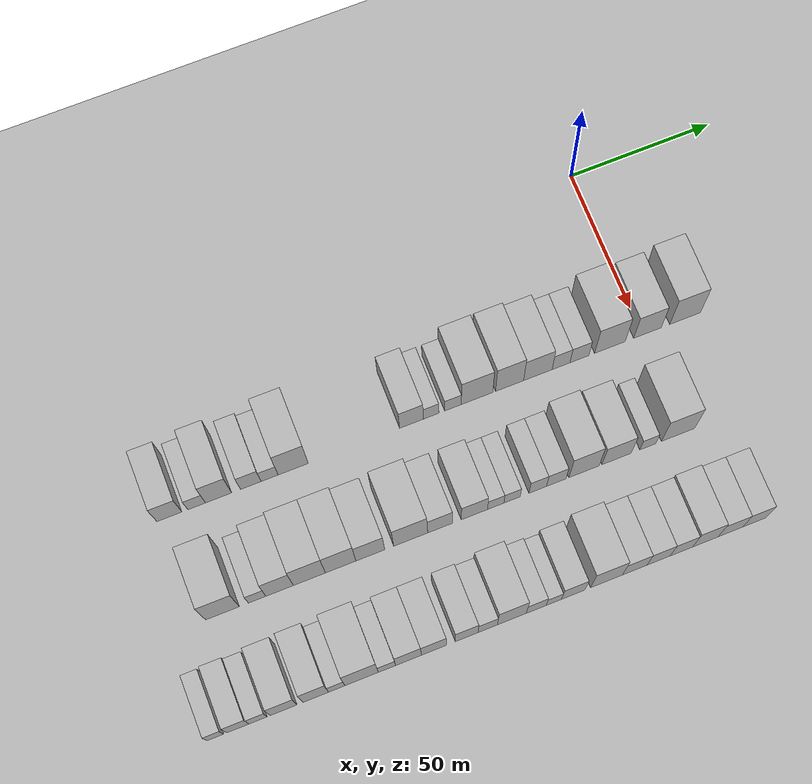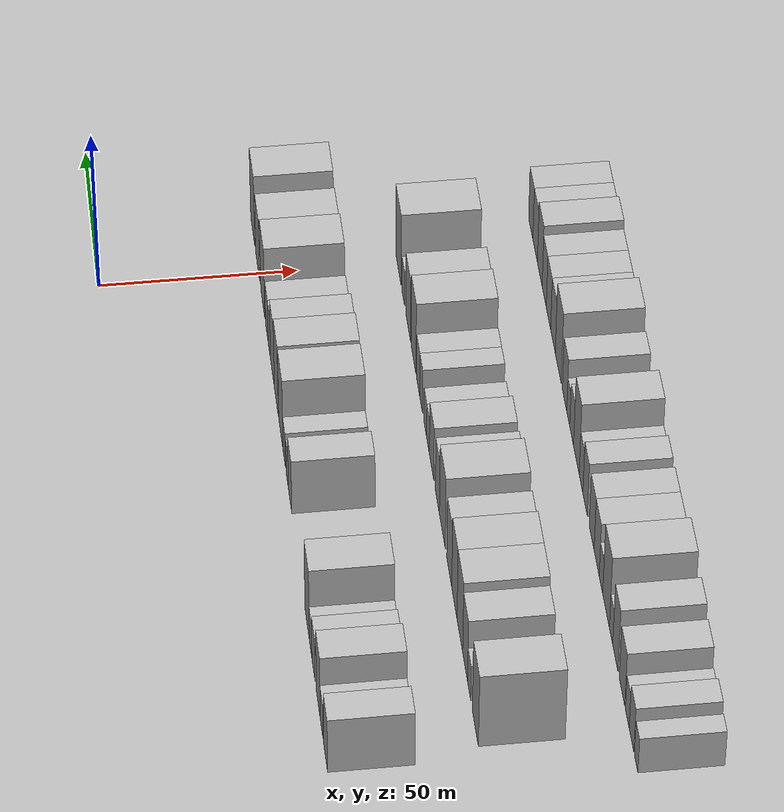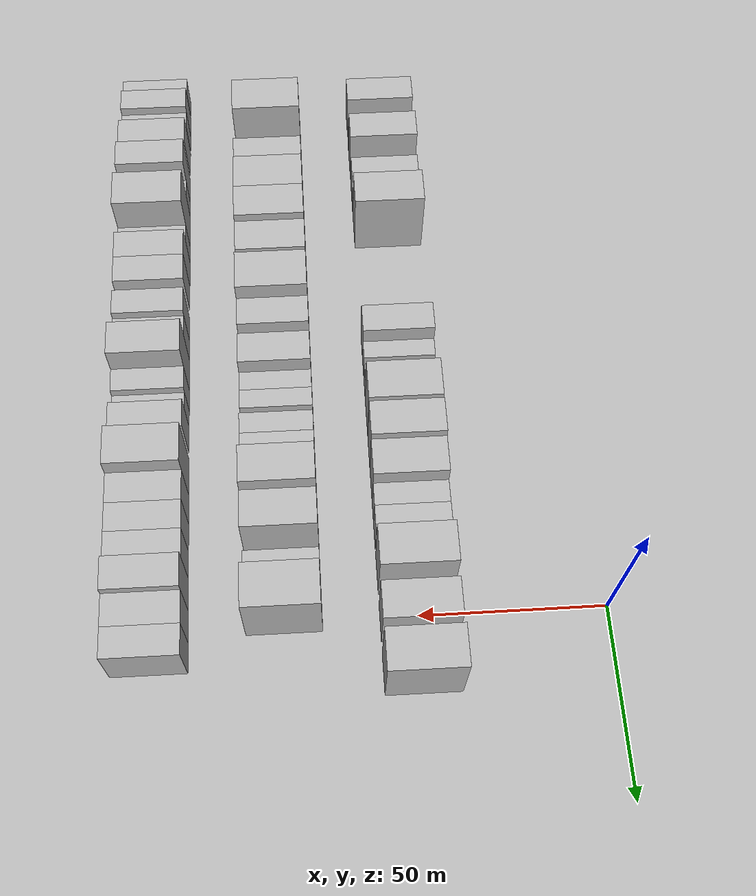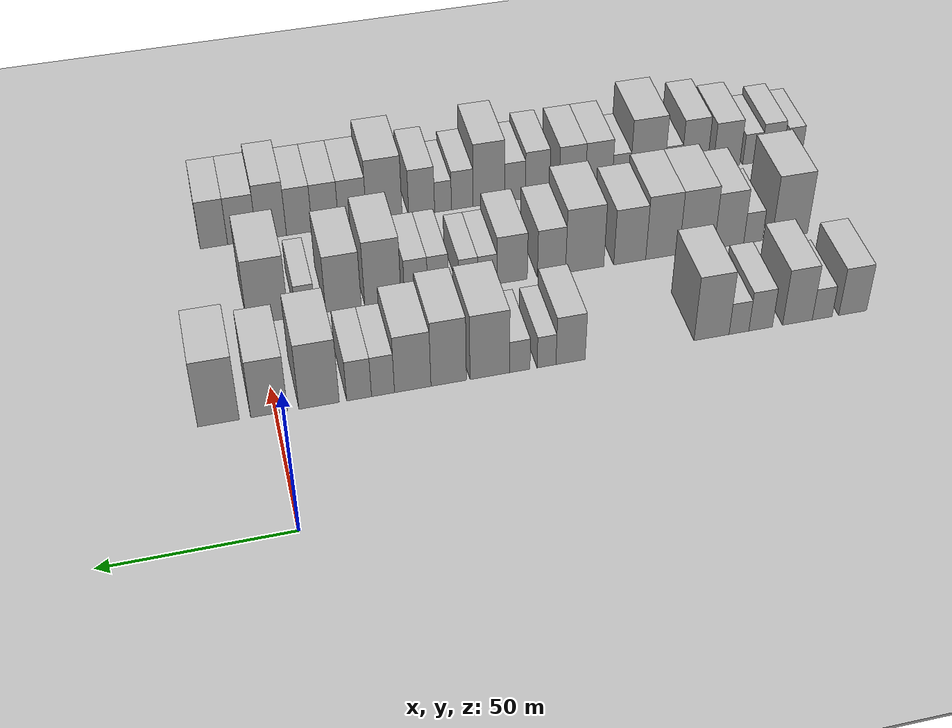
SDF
<sdf version="1.6">
 <world name="default">
  <include><name>ground_plane_1</name><uri>model://HANNAS_ground_plane</uri></include>
  <include>
   <name>ground_plane_2</name>
   <uri>model://HANNAS_ground_plane</uri>
   <pose>100 0 0  0 0 0</pose>
  </include>
  <model name="building_23">
   <static>1</static>
   <pose>50.0000 -162.8653 0 0.000000 0.000000 0.000000</pose>
   <link name="link">
    <pose>0 0 9.00 0 0 0</pose>
    <collision name="collision"><geometry><box><size>20.0000 8.3515 18.0000</size></box></geometry></collision>
    <visual name="visual">
     <cast_shadows>0</cast_shadows>
     <geometry><box><size>20.0000 8.3515 18.0000</size></box></geometry>
     <material>
      <script>
       <uri>model://HANNAS_wall/materials/scripts</uri>
       <uri>model://HANNAS_wall/materials/textures</uri>
       <name>vrc/HANNAS_wall</name>
      </script>
     </material>
    </visual>
   </link>
  </model>
  <model name="building_24">
   <static>1</static>
   <pose>50.0000 -153.7369 0 0.000000 0.000000 0.000000</pose>
   <link name="link">
    <pose>0 0 6.00 0 0 0</pose>
    <collision name="collision"><geometry><box><size>20.0000 5.9052 12.0000</size></box></geometry></collision>
    <visual name="visual">
     <cast_shadows>0</cast_shadows>
     <geometry><box><size>20.0000 5.9052 12.0000</size></box></geometry>
     <material>
      <script>
       <uri>model://HANNAS_wall/materials/scripts</uri>
       <uri>model://HANNAS_wall/materials/textures</uri>
       <name>vrc/HANNAS_wall</name>
      </script>
     </material>
    </visual>
   </link>
  </model>
  <model name="building_25">
   <static>1</static>
   <pose>50.0000 -146.3802 0 0.000000 0.000000 0.000000</pose>
   <link name="link">
    <pose>0 0 10.50 0 0 0</pose>
    <collision name="collision"><geometry><box><size>20.0000 8.8084 21.0000</size></box></geometry></collision>
    <visual name="visual">
     <cast_shadows>0</cast_shadows>
     <geometry><box><size>20.0000 8.8084 21.0000</size></box></geometry>
     <material>
      <script>
       <uri>model://HANNAS_wall/materials/scripts</uri>
       <uri>model://HANNAS_wall/materials/textures</uri>
       <name>vrc/HANNAS_wall</name>
      </script>
     </material>
    </visual>
   </link>
  </model>
  <model name="building_26">
   <static>1</static>
   <pose>50.0000 -135.5037 0 0.000000 0.000000 0.000000</pose>
   <link name="link">
    <pose>0 0 7.50 0 0 0</pose>
    <collision name="collision"><geometry><box><size>20.0000 6.9447 15.0000</size></box></geometry></collision>
    <visual name="visual">
     <cast_shadows>0</cast_shadows>
     <geometry><box><size>20.0000 6.9447 15.0000</size></box></geometry>
     <material>
      <script>
       <uri>model://HANNAS_wall/materials/scripts</uri>
       <uri>model://HANNAS_wall/materials/textures</uri>
       <name>vrc/HANNAS_wall</name>
      </script>
     </material>
    </visual>
   </link>
  </model>
  <model name="building_27">
   <static>1</static>
   <pose>50.0000 -129.1409 0 0.000000 0.000000 0.000000</pose>
   <link name="link">
    <pose>0 0 6.00 0 0 0</pose>
    <collision name="collision"><geometry><box><size>20.0000 5.7808 12.0000</size></box></geometry></collision>
    <visual name="visual">
     <cast_shadows>0</cast_shadows>
     <geometry><box><size>20.0000 5.7808 12.0000</size></box></geometry>
     <material>
      <script>
       <uri>model://HANNAS_wall/materials/scripts</uri>
       <uri>model://HANNAS_wall/materials/textures</uri>
       <name>vrc/HANNAS_wall</name>
      </script>
     </material>
    </visual>
   </link>
  </model>
  <model name="building_28">
   <static>1</static>
   <pose>50.0000 -121.1450 0 0.000000 0.000000 0.000000</pose>
   <link name="link">
    <pose>0 0 12.00 0 0 0</pose>
    <collision name="collision"><geometry><box><size>20.0000 10.2110 24.0000</size></box></geometry></collision>
    <visual name="visual">
     <cast_shadows>0</cast_shadows>
     <geometry><box><size>20.0000 10.2110 24.0000</size></box></geometry>
     <material>
      <script>
       <uri>model://HANNAS_wall/materials/scripts</uri>
       <uri>model://HANNAS_wall/materials/textures</uri>
       <name>vrc/HANNAS_wall</name>
      </script>
     </material>
    </visual>
   </link>
  </model>
  <model name="building_29">
   <static>1</static>
   <pose>50.0000 -80.6771 0 0.000000 0.000000 0.000000</pose>
   <link name="link">
    <pose>0 0 9.00 0 0 0</pose>
    <collision name="collision"><geometry><box><size>20.0000 8.2416 18.0000</size></box></geometry></collision>
    <visual name="visual">
     <cast_shadows>0</cast_shadows>
     <geometry><box><size>20.0000 8.2416 18.0000</size></box></geometry>
     <material>
      <script>
       <uri>model://HANNAS_wall/materials/scripts</uri>
       <uri>model://HANNAS_wall/materials/textures</uri>
       <name>vrc/HANNAS_wall</name>
      </script>
     </material>
    </visual>
   </link>
  </model>
  <model name="building_30">
   <static>1</static>
   <pose>50.0000 -73.9138 0 0.000000 0.000000 0.000000</pose>
   <link name="link">
    <pose>0 0 6.00 0 0 0</pose>
    <collision name="collision"><geometry><box><size>20.0000 5.2849 12.0000</size></box></geometry></collision>
    <visual name="visual">
     <cast_shadows>0</cast_shadows>
     <geometry><box><size>20.0000 5.2849 12.0000</size></box></geometry>
     <material>
      <script>
       <uri>model://HANNAS_wall/materials/scripts</uri>
       <uri>model://HANNAS_wall/materials/textures</uri>
       <name>vrc/HANNAS_wall</name>
      </script>
     </material>
    </visual>
   </link>
  </model>
  <model name="building_31">
   <static>1</static>
   <pose>50.0000 -66.4016 0 0.000000 0.000000 0.000000</pose>
   <link name="link">
    <pose>0 0 6.00 0 0 0</pose>
    <collision name="collision"><geometry><box><size>20.0000 5.7396 12.0000</size></box></geometry></collision>
    <visual name="visual">
     <cast_shadows>0</cast_shadows>
     <geometry><box><size>20.0000 5.7396 12.0000</size></box></geometry>
     <material>
      <script>
       <uri>model://HANNAS_wall/materials/scripts</uri>
       <uri>model://HANNAS_wall/materials/textures</uri>
       <name>vrc/HANNAS_wall</name>
      </script>
     </material>
    </visual>
   </link>
  </model>
  <model name="building_32">
   <static>1</static>
   <pose>50.0000 -58.0691 0 0.000000 0.000000 0.000000</pose>
   <link name="link">
    <pose>0 0 12.00 0 0 0</pose>
    <collision name="collision"><geometry><box><size>20.0000 10.9255 24.0000</size></box></geometry></collision>
    <visual name="visual">
     <cast_shadows>0</cast_shadows>
     <geometry><box><size>20.0000 10.9255 24.0000</size></box></geometry>
     <material>
      <script>
       <uri>model://HANNAS_wall/materials/scripts</uri>
       <uri>model://HANNAS_wall/materials/textures</uri>
       <name>vrc/HANNAS_wall</name>
      </script>
     </material>
    </visual>
   </link>
  </model>
  <model name="building_33">
   <static>1</static>
   <pose>50.0000 -46.7354 0 0.000000 0.000000 0.000000</pose>
   <link name="link">
    <pose>0 0 12.00 0 0 0</pose>
    <collision name="collision"><geometry><box><size>20.0000 9.7419 24.0000</size></box></geometry></collision>
    <visual name="visual">
     <cast_shadows>0</cast_shadows>
     <geometry><box><size>20.0000 9.7419 24.0000</size></box></geometry>
     <material>
      <script>
       <uri>model://HANNAS_wall/materials/scripts</uri>
       <uri>model://HANNAS_wall/materials/textures</uri>
       <name>vrc/HANNAS_wall</name>
      </script>
     </material>
    </visual>
   </link>
  </model>
  <model name="building_34">
   <static>1</static>
   <pose>50.0000 -36.8863 0 0.000000 0.000000 0.000000</pose>
   <link name="link">
    <pose>0 0 10.50 0 0 0</pose>
    <collision name="collision"><geometry><box><size>20.0000 9.9563 21.0000</size></box></geometry></collision>
    <visual name="visual">
     <cast_shadows>0</cast_shadows>
     <geometry><box><size>20.0000 9.9563 21.0000</size></box></geometry>
     <material>
      <script>
       <uri>model://HANNAS_wall/materials/scripts</uri>
       <uri>model://HANNAS_wall/materials/textures</uri>
       <name>vrc/HANNAS_wall</name>
      </script>
     </material>
    </visual>
   </link>
  </model>
  <model name="building_35">
   <static>1</static>
   <pose>50.0000 -28.7906 0 0.000000 0.000000 0.000000</pose>
   <link name="link">
    <pose>0 0 7.50 0 0 0</pose>
    <collision name="collision"><geometry><box><size>20.0000 6.2351 15.0000</size></box></geometry></collision>
    <visual name="visual">
     <cast_shadows>0</cast_shadows>
     <geometry><box><size>20.0000 6.2351 15.0000</size></box></geometry>
     <material>
      <script>
       <uri>model://HANNAS_wall/materials/scripts</uri>
       <uri>model://HANNAS_wall/materials/textures</uri>
       <name>vrc/HANNAS_wall</name>
      </script>
     </material>
    </visual>
   </link>
  </model>
  <model name="building_36">
   <static>1</static>
   <pose>50.0000 -22.3189 0 0.000000 0.000000 0.000000</pose>
   <link name="link">
    <pose>0 0 7.50 0 0 0</pose>
    <collision name="collision"><geometry><box><size>20.0000 6.7085 15.0000</size></box></geometry></collision>
    <visual name="visual">
     <cast_shadows>0</cast_shadows>
     <geometry><box><size>20.0000 6.7085 15.0000</size></box></geometry>
     <material>
      <script>
       <uri>model://HANNAS_wall/materials/scripts</uri>
       <uri>model://HANNAS_wall/materials/textures</uri>
       <name>vrc/HANNAS_wall</name>
      </script>
     </material>
    </visual>
   </link>
  </model>
  <model name="building_37">
   <static>1</static>
   <pose>50.0000 -11.5609 0 0.000000 0.000000 0.000000</pose>
   <link name="link">
    <pose>0 0 12.00 0 0 0</pose>
    <collision name="collision"><geometry><box><size>20.0000 10.8074 24.0000</size></box></geometry></collision>
    <visual name="visual">
     <cast_shadows>0</cast_shadows>
     <geometry><box><size>20.0000 10.8074 24.0000</size></box></geometry>
     <material>
      <script>
       <uri>model://HANNAS_wall/materials/scripts</uri>
       <uri>model://HANNAS_wall/materials/textures</uri>
       <name>vrc/HANNAS_wall</name>
      </script>
     </material>
    </visual>
   </link>
  </model>
  <model name="building_38">
   <static>1</static>
   <pose>50.0000 1.7379 0 0.000000 0.000000 0.000000</pose>
   <link name="link">
    <pose>0 0 10.50 0 0 0</pose>
    <collision name="collision"><geometry><box><size>20.0000 9.7903 21.0000</size></box></geometry></collision>
    <visual name="visual">
     <cast_shadows>0</cast_shadows>
     <geometry><box><size>20.0000 9.7903 21.0000</size></box></geometry>
     <material>
      <script>
       <uri>model://HANNAS_wall/materials/scripts</uri>
       <uri>model://HANNAS_wall/materials/textures</uri>
       <name>vrc/HANNAS_wall</name>
      </script>
     </material>
    </visual>
   </link>
  </model>
  <model name="building_39">
   <static>1</static>
   <pose>50.0000 15.1060 0 0.000000 0.000000 0.000000</pose>
   <link name="link">
    <pose>0 0 12.00 0 0 0</pose>
    <collision name="collision"><geometry><box><size>20.0000 10.9457 24.0000</size></box></geometry></collision>
    <visual name="visual">
     <cast_shadows>0</cast_shadows>
     <geometry><box><size>20.0000 10.9457 24.0000</size></box></geometry>
     <material>
      <script>
       <uri>model://HANNAS_wall/materials/scripts</uri>
       <uri>model://HANNAS_wall/materials/textures</uri>
       <name>vrc/HANNAS_wall</name>
      </script>
     </material>
    </visual>
   </link>
  </model>
  <model name="building_94">
   <static>1</static>
   <pose>85.0000 -157.5583 0 0.000000 0.000000 0.000000</pose>
   <link name="link">
    <pose>0 0 12.00 0 0 0</pose>
    <collision name="collision"><geometry><box><size>20.0000 11.1377 24.0000</size></box></geometry></collision>
    <visual name="visual">
     <cast_shadows>0</cast_shadows>
     <geometry><box><size>20.0000 11.1377 24.0000</size></box></geometry>
     <material>
      <script>
       <uri>model://HANNAS_wall/materials/scripts</uri>
       <uri>model://HANNAS_wall/materials/textures</uri>
       <name>vrc/HANNAS_wall</name>
      </script>
     </material>
    </visual>
   </link>
  </model>
  <model name="building_95">
   <static>1</static>
   <pose>85.0000 -146.0877 0 0.000000 0.000000 0.000000</pose>
   <link name="link">
    <pose>0 0 6.00 0 0 0</pose>
    <collision name="collision"><geometry><box><size>20.0000 5.8034 12.0000</size></box></geometry></collision>
    <visual name="visual">
     <cast_shadows>0</cast_shadows>
     <geometry><box><size>20.0000 5.8034 12.0000</size></box></geometry>
     <material>
      <script>
       <uri>model://HANNAS_wall/materials/scripts</uri>
       <uri>model://HANNAS_wall/materials/textures</uri>
       <name>vrc/HANNAS_wall</name>
      </script>
     </material>
    </visual>
   </link>
  </model>
  <model name="building_96">
   <static>1</static>
   <pose>85.0000 -138.6316 0 0.000000 0.000000 0.000000</pose>
   <link name="link">
    <pose>0 0 10.50 0 0 0</pose>
    <collision name="collision"><geometry><box><size>20.0000 9.1089 21.0000</size></box></geometry></collision>
    <visual name="visual">
     <cast_shadows>0</cast_shadows>
     <geometry><box><size>20.0000 9.1089 21.0000</size></box></geometry>
     <material>
      <script>
       <uri>model://HANNAS_wall/materials/scripts</uri>
       <uri>model://HANNAS_wall/materials/textures</uri>
       <name>vrc/HANNAS_wall</name>
      </script>
     </material>
    </visual>
   </link>
  </model>
  <model name="building_97">
   <static>1</static>
   <pose>85.0000 -128.6954 0 0.000000 0.000000 0.000000</pose>
   <link name="link">
    <pose>0 0 12.00 0 0 0</pose>
    <collision name="collision"><geometry><box><size>20.0000 10.7635 24.0000</size></box></geometry></collision>
    <visual name="visual">
     <cast_shadows>0</cast_shadows>
     <geometry><box><size>20.0000 10.7635 24.0000</size></box></geometry>
     <material>
      <script>
       <uri>model://HANNAS_wall/materials/scripts</uri>
       <uri>model://HANNAS_wall/materials/textures</uri>
       <name>vrc/HANNAS_wall</name>
      </script>
     </material>
    </visual>
   </link>
  </model>
  <model name="building_98">
   <static>1</static>
   <pose>85.0000 -118.2022 0 0.000000 0.000000 0.000000</pose>
   <link name="link">
    <pose>0 0 12.00 0 0 0</pose>
    <collision name="collision"><geometry><box><size>20.0000 10.2230 24.0000</size></box></geometry></collision>
    <visual name="visual">
     <cast_shadows>0</cast_shadows>
     <geometry><box><size>20.0000 10.2230 24.0000</size></box></geometry>
     <material>
      <script>
       <uri>model://HANNAS_wall/materials/scripts</uri>
       <uri>model://HANNAS_wall/materials/textures</uri>
       <name>vrc/HANNAS_wall</name>
      </script>
     </material>
    </visual>
   </link>
  </model>
  <model name="building_99">
   <static>1</static>
   <pose>85.0000 -108.2483 0 0.000000 0.000000 0.000000</pose>
   <link name="link">
    <pose>0 0 10.50 0 0 0</pose>
    <collision name="collision"><geometry><box><size>20.0000 9.6846 21.0000</size></box></geometry></collision>
    <visual name="visual">
     <cast_shadows>0</cast_shadows>
     <geometry><box><size>20.0000 9.6846 21.0000</size></box></geometry>
     <material>
      <script>
       <uri>model://HANNAS_wall/materials/scripts</uri>
       <uri>model://HANNAS_wall/materials/textures</uri>
       <name>vrc/HANNAS_wall</name>
      </script>
     </material>
    </visual>
   </link>
  </model>
  <model name="building_100">
   <static>1</static>
   <pose>85.0000 -94.6625 0 0.000000 0.000000 0.000000</pose>
   <link name="link">
    <pose>0 0 12.00 0 0 0</pose>
    <collision name="collision"><geometry><box><size>20.0000 11.4871 24.0000</size></box></geometry></collision>
    <visual name="visual">
     <cast_shadows>0</cast_shadows>
     <geometry><box><size>20.0000 11.4871 24.0000</size></box></geometry>
     <material>
      <script>
       <uri>model://HANNAS_wall/materials/scripts</uri>
       <uri>model://HANNAS_wall/materials/textures</uri>
       <name>vrc/HANNAS_wall</name>
      </script>
     </material>
    </visual>
   </link>
  </model>
  <model name="building_101">
   <static>1</static>
   <pose>85.0000 -84.7346 0 0.000000 0.000000 0.000000</pose>
   <link name="link">
    <pose>0 0 9.00 0 0 0</pose>
    <collision name="collision"><geometry><box><size>20.0000 8.3687 18.0000</size></box></geometry></collision>
    <visual name="visual">
     <cast_shadows>0</cast_shadows>
     <geometry><box><size>20.0000 8.3687 18.0000</size></box></geometry>
     <material>
      <script>
       <uri>model://HANNAS_wall/materials/scripts</uri>
       <uri>model://HANNAS_wall/materials/textures</uri>
       <name>vrc/HANNAS_wall</name>
      </script>
     </material>
    </visual>
   </link>
  </model>
  <model name="building_102">
   <static>1</static>
   <pose>85.0000 -73.0679 0 0.000000 0.000000 0.000000</pose>
   <link name="link">
    <pose>0 0 9.00 0 0 0</pose>
    <collision name="collision"><geometry><box><size>20.0000 8.9647 18.0000</size></box></geometry></collision>
    <visual name="visual">
     <cast_shadows>0</cast_shadows>
     <geometry><box><size>20.0000 8.9647 18.0000</size></box></geometry>
     <material>
      <script>
       <uri>model://HANNAS_wall/materials/scripts</uri>
       <uri>model://HANNAS_wall/materials/textures</uri>
       <name>vrc/HANNAS_wall</name>
      </script>
     </material>
    </visual>
   </link>
  </model>
  <model name="building_103">
   <static>1</static>
   <pose>85.0000 -65.7887 0 0.000000 0.000000 0.000000</pose>
   <link name="link">
    <pose>0 0 6.00 0 0 0</pose>
    <collision name="collision"><geometry><box><size>20.0000 5.5937 12.0000</size></box></geometry></collision>
    <visual name="visual">
     <cast_shadows>0</cast_shadows>
     <geometry><box><size>20.0000 5.5937 12.0000</size></box></geometry>
     <material>
      <script>
       <uri>model://HANNAS_wall/materials/scripts</uri>
       <uri>model://HANNAS_wall/materials/textures</uri>
       <name>vrc/HANNAS_wall</name>
      </script>
     </material>
    </visual>
   </link>
  </model>
  <model name="building_104">
   <static>1</static>
   <pose>85.0000 -60.2084 0 0.000000 0.000000 0.000000</pose>
   <link name="link">
    <pose>0 0 6.00 0 0 0</pose>
    <collision name="collision"><geometry><box><size>20.0000 5.5667 12.0000</size></box></geometry></collision>
    <visual name="visual">
     <cast_shadows>0</cast_shadows>
     <geometry><box><size>20.0000 5.5667 12.0000</size></box></geometry>
     <material>
      <script>
       <uri>model://HANNAS_wall/materials/scripts</uri>
       <uri>model://HANNAS_wall/materials/textures</uri>
       <name>vrc/HANNAS_wall</name>
      </script>
     </material>
    </visual>
   </link>
  </model>
  <model name="building_105">
   <static>1</static>
   <pose>85.0000 -51.4132 0 0.000000 0.000000 0.000000</pose>
   <link name="link">
    <pose>0 0 7.50 0 0 0</pose>
    <collision name="collision"><geometry><box><size>20.0000 6.0238 15.0000</size></box></geometry></collision>
    <visual name="visual">
     <cast_shadows>0</cast_shadows>
     <geometry><box><size>20.0000 6.0238 15.0000</size></box></geometry>
     <material>
      <script>
       <uri>model://HANNAS_wall/materials/scripts</uri>
       <uri>model://HANNAS_wall/materials/textures</uri>
       <name>vrc/HANNAS_wall</name>
      </script>
     </material>
    </visual>
   </link>
  </model>
  <model name="building_106">
   <static>1</static>
   <pose>85.0000 -45.0506 0 0.000000 0.000000 0.000000</pose>
   <link name="link">
    <pose>0 0 7.50 0 0 0</pose>
    <collision name="collision"><geometry><box><size>20.0000 6.7012 15.0000</size></box></geometry></collision>
    <visual name="visual">
     <cast_shadows>0</cast_shadows>
     <geometry><box><size>20.0000 6.7012 15.0000</size></box></geometry>
     <material>
      <script>
       <uri>model://HANNAS_wall/materials/scripts</uri>
       <uri>model://HANNAS_wall/materials/textures</uri>
       <name>vrc/HANNAS_wall</name>
      </script>
     </material>
    </visual>
   </link>
  </model>
  <model name="building_107">
   <static>1</static>
   <pose>85.0000 -35.4828 0 0.000000 0.000000 0.000000</pose>
   <link name="link">
    <pose>0 0 12.00 0 0 0</pose>
    <collision name="collision"><geometry><box><size>20.0000 10.4345 24.0000</size></box></geometry></collision>
    <visual name="visual">
     <cast_shadows>0</cast_shadows>
     <geometry><box><size>20.0000 10.4345 24.0000</size></box></geometry>
     <material>
      <script>
       <uri>model://HANNAS_wall/materials/scripts</uri>
       <uri>model://HANNAS_wall/materials/textures</uri>
       <name>vrc/HANNAS_wall</name>
      </script>
     </material>
    </visual>
   </link>
  </model>
  <model name="building_108">
   <static>1</static>
   <pose>85.0000 -24.1952 0 0.000000 0.000000 0.000000</pose>
   <link name="link">
    <pose>0 0 10.50 0 0 0</pose>
    <collision name="collision"><geometry><box><size>20.0000 10.1408 21.0000</size></box></geometry></collision>
    <visual name="visual">
     <cast_shadows>0</cast_shadows>
     <geometry><box><size>20.0000 10.1408 21.0000</size></box></geometry>
     <material>
      <script>
       <uri>model://HANNAS_wall/materials/scripts</uri>
       <uri>model://HANNAS_wall/materials/textures</uri>
       <name>vrc/HANNAS_wall</name>
      </script>
     </material>
    </visual>
   </link>
  </model>
  <model name="building_109">
   <static>1</static>
   <pose>85.0000 -13.3583 0 0.000000 0.000000 0.000000</pose>
   <link name="link">
    <pose>0 0 6.00 0 0 0</pose>
    <collision name="collision"><geometry><box><size>20.0000 5.5329 12.0000</size></box></geometry></collision>
    <visual name="visual">
     <cast_shadows>0</cast_shadows>
     <geometry><box><size>20.0000 5.5329 12.0000</size></box></geometry>
     <material>
      <script>
       <uri>model://HANNAS_wall/materials/scripts</uri>
       <uri>model://HANNAS_wall/materials/textures</uri>
       <name>vrc/HANNAS_wall</name>
      </script>
     </material>
    </visual>
   </link>
  </model>
  <model name="building_110">
   <static>1</static>
   <pose>85.0000 -2.7761 0 0.000000 0.000000 0.000000</pose>
   <link name="link">
    <pose>0 0 12.00 0 0 0</pose>
    <collision name="collision"><geometry><box><size>20.0000 11.6315 24.0000</size></box></geometry></collision>
    <visual name="visual">
     <cast_shadows>0</cast_shadows>
     <geometry><box><size>20.0000 11.6315 24.0000</size></box></geometry>
     <material>
      <script>
       <uri>model://HANNAS_wall/materials/scripts</uri>
       <uri>model://HANNAS_wall/materials/textures</uri>
       <name>vrc/HANNAS_wall</name>
      </script>
     </material>
    </visual>
   </link>
  </model>
  <model name="building_171">
   <static>1</static>
   <pose>120.0000 -172.3507 0 0.000000 0.000000 0.000000</pose>
   <link name="link">
    <pose>0 0 6.00 0 0 0</pose>
    <collision name="collision"><geometry><box><size>20.0000 5.4005 12.0000</size></box></geometry></collision>
    <visual name="visual">
     <cast_shadows>0</cast_shadows>
     <geometry><box><size>20.0000 5.4005 12.0000</size></box></geometry>
     <material>
      <script>
       <uri>model://HANNAS_wall/materials/scripts</uri>
       <uri>model://HANNAS_wall/materials/textures</uri>
       <name>vrc/HANNAS_wall</name>
      </script>
     </material>
    </visual>
   </link>
  </model>
  <model name="building_172">
   <static>1</static>
   <pose>120.0000 -165.0435 0 0.000000 0.000000 0.000000</pose>
   <link name="link">
    <pose>0 0 7.50 0 0 0</pose>
    <collision name="collision"><geometry><box><size>20.0000 7.2139 15.0000</size></box></geometry></collision>
    <visual name="visual">
     <cast_shadows>0</cast_shadows>
     <geometry><box><size>20.0000 7.2139 15.0000</size></box></geometry>
     <material>
      <script>
       <uri>model://HANNAS_wall/materials/scripts</uri>
       <uri>model://HANNAS_wall/materials/textures</uri>
       <name>vrc/HANNAS_wall</name>
      </script>
     </material>
    </visual>
   </link>
  </model>
  <model name="building_173">
   <static>1</static>
   <pose>120.0000 -158.4932 0 0.000000 0.000000 0.000000</pose>
   <link name="link">
    <pose>0 0 6.00 0 0 0</pose>
    <collision name="collision"><geometry><box><size>20.0000 5.8865 12.0000</size></box></geometry></collision>
    <visual name="visual">
     <cast_shadows>0</cast_shadows>
     <geometry><box><size>20.0000 5.8865 12.0000</size></box></geometry>
     <material>
      <script>
       <uri>model://HANNAS_wall/materials/scripts</uri>
       <uri>model://HANNAS_wall/materials/textures</uri>
       <name>vrc/HANNAS_wall</name>
      </script>
     </material>
    </visual>
   </link>
  </model>
  <model name="building_174">
   <static>1</static>
   <pose>120.0000 -150.1809 0 0.000000 0.000000 0.000000</pose>
   <link name="link">
    <pose>0 0 9.00 0 0 0</pose>
    <collision name="collision"><geometry><box><size>20.0000 8.7381 18.0000</size></box></geometry></collision>
    <visual name="visual">
     <cast_shadows>0</cast_shadows>
     <geometry><box><size>20.0000 8.7381 18.0000</size></box></geometry>
     <material>
      <script>
       <uri>model://HANNAS_wall/materials/scripts</uri>
       <uri>model://HANNAS_wall/materials/textures</uri>
       <name>vrc/HANNAS_wall</name>
      </script>
     </material>
    </visual>
   </link>
  </model>
  <model name="building_175">
   <static>1</static>
   <pose>120.0000 -139.6105 0 0.000000 0.000000 0.000000</pose>
   <link name="link">
    <pose>0 0 10.50 0 0 0</pose>
    <collision name="collision"><geometry><box><size>20.0000 8.4028 21.0000</size></box></geometry></collision>
    <visual name="visual">
     <cast_shadows>0</cast_shadows>
     <geometry><box><size>20.0000 8.4028 21.0000</size></box></geometry>
     <material>
      <script>
       <uri>model://HANNAS_wall/materials/scripts</uri>
       <uri>model://HANNAS_wall/materials/textures</uri>
       <name>vrc/HANNAS_wall</name>
      </script>
     </material>
    </visual>
   </link>
  </model>
  <model name="building_176">
   <static>1</static>
   <pose>120.0000 -132.7297 0 0.000000 0.000000 0.000000</pose>
   <link name="link">
    <pose>0 0 6.00 0 0 0</pose>
    <collision name="collision"><geometry><box><size>20.0000 5.3589 12.0000</size></box></geometry></collision>
    <visual name="visual">
     <cast_shadows>0</cast_shadows>
     <geometry><box><size>20.0000 5.3589 12.0000</size></box></geometry>
     <material>
      <script>
       <uri>model://HANNAS_wall/materials/scripts</uri>
       <uri>model://HANNAS_wall/materials/textures</uri>
       <name>vrc/HANNAS_wall</name>
      </script>
     </material>
    </visual>
   </link>
  </model>
  <model name="building_177">
   <static>1</static>
   <pose>120.0000 -124.5408 0 0.000000 0.000000 0.000000</pose>
   <link name="link">
    <pose>0 0 12.00 0 0 0</pose>
    <collision name="collision"><geometry><box><size>20.0000 11.0188 24.0000</size></box></geometry></collision>
    <visual name="visual">
     <cast_shadows>0</cast_shadows>
     <geometry><box><size>20.0000 11.0188 24.0000</size></box></geometry>
     <material>
      <script>
       <uri>model://HANNAS_wall/materials/scripts</uri>
       <uri>model://HANNAS_wall/materials/textures</uri>
       <name>vrc/HANNAS_wall</name>
      </script>
     </material>
    </visual>
   </link>
  </model>
  <model name="building_178">
   <static>1</static>
   <pose>120.0000 -116.1873 0 0.000000 0.000000 0.000000</pose>
   <link name="link">
    <pose>0 0 6.00 0 0 0</pose>
    <collision name="collision"><geometry><box><size>20.0000 5.6883 12.0000</size></box></geometry></collision>
    <visual name="visual">
     <cast_shadows>0</cast_shadows>
     <geometry><box><size>20.0000 5.6883 12.0000</size></box></geometry>
     <material>
      <script>
       <uri>model://HANNAS_wall/materials/scripts</uri>
       <uri>model://HANNAS_wall/materials/textures</uri>
       <name>vrc/HANNAS_wall</name>
      </script>
     </material>
    </visual>
   </link>
  </model>
  <model name="building_179">
   <static>1</static>
   <pose>120.0000 -109.0660 0 0.000000 0.000000 0.000000</pose>
   <link name="link">
    <pose>0 0 9.00 0 0 0</pose>
    <collision name="collision"><geometry><box><size>20.0000 8.5544 18.0000</size></box></geometry></collision>
    <visual name="visual">
     <cast_shadows>0</cast_shadows>
     <geometry><box><size>20.0000 8.5544 18.0000</size></box></geometry>
     <material>
      <script>
       <uri>model://HANNAS_wall/materials/scripts</uri>
       <uri>model://HANNAS_wall/materials/textures</uri>
       <name>vrc/HANNAS_wall</name>
      </script>
     </material>
    </visual>
   </link>
  </model>
  <model name="building_180">
   <static>1</static>
   <pose>120.0000 -100.6531 0 0.000000 0.000000 0.000000</pose>
   <link name="link">
    <pose>0 0 9.00 0 0 0</pose>
    <collision name="collision"><geometry><box><size>20.0000 8.2714 18.0000</size></box></geometry></collision>
    <visual name="visual">
     <cast_shadows>0</cast_shadows>
     <geometry><box><size>20.0000 8.2714 18.0000</size></box></geometry>
     <material>
      <script>
       <uri>model://HANNAS_wall/materials/scripts</uri>
       <uri>model://HANNAS_wall/materials/textures</uri>
       <name>vrc/HANNAS_wall</name>
      </script>
     </material>
    </visual>
   </link>
  </model>
  <model name="building_181">
   <static>1</static>
   <pose>120.0000 -89.7271 0 0.000000 0.000000 0.000000</pose>
   <link name="link">
    <pose>0 0 9.00 0 0 0</pose>
    <collision name="collision"><geometry><box><size>20.0000 7.5805 18.0000</size></box></geometry></collision>
    <visual name="visual">
     <cast_shadows>0</cast_shadows>
     <geometry><box><size>20.0000 7.5805 18.0000</size></box></geometry>
     <material>
      <script>
       <uri>model://HANNAS_wall/materials/scripts</uri>
       <uri>model://HANNAS_wall/materials/textures</uri>
       <name>vrc/HANNAS_wall</name>
      </script>
     </material>
    </visual>
   </link>
  </model>
  <model name="building_182">
   <static>1</static>
   <pose>120.0000 -82.7107 0 0.000000 0.000000 0.000000</pose>
   <link name="link">
    <pose>0 0 7.50 0 0 0</pose>
    <collision name="collision"><geometry><box><size>20.0000 6.4524 15.0000</size></box></geometry></collision>
    <visual name="visual">
     <cast_shadows>0</cast_shadows>
     <geometry><box><size>20.0000 6.4524 15.0000</size></box></geometry>
     <material>
      <script>
       <uri>model://HANNAS_wall/materials/scripts</uri>
       <uri>model://HANNAS_wall/materials/textures</uri>
       <name>vrc/HANNAS_wall</name>
      </script>
     </material>
    </visual>
   </link>
  </model>
  <model name="building_183">
   <static>1</static>
   <pose>120.0000 -74.6228 0 0.000000 0.000000 0.000000</pose>
   <link name="link">
    <pose>0 0 12.00 0 0 0</pose>
    <collision name="collision"><geometry><box><size>20.0000 9.7233 24.0000</size></box></geometry></collision>
    <visual name="visual">
     <cast_shadows>0</cast_shadows>
     <geometry><box><size>20.0000 9.7233 24.0000</size></box></geometry>
     <material>
      <script>
       <uri>model://HANNAS_wall/materials/scripts</uri>
       <uri>model://HANNAS_wall/materials/textures</uri>
       <name>vrc/HANNAS_wall</name>
      </script>
     </material>
    </visual>
   </link>
  </model>
  <model name="building_184">
   <static>1</static>
   <pose>120.0000 -66.4182 0 0.000000 0.000000 0.000000</pose>
   <link name="link">
    <pose>0 0 7.50 0 0 0</pose>
    <collision name="collision"><geometry><box><size>20.0000 6.6860 15.0000</size></box></geometry></collision>
    <visual name="visual">
     <cast_shadows>0</cast_shadows>
     <geometry><box><size>20.0000 6.6860 15.0000</size></box></geometry>
     <material>
      <script>
       <uri>model://HANNAS_wall/materials/scripts</uri>
       <uri>model://HANNAS_wall/materials/textures</uri>
       <name>vrc/HANNAS_wall</name>
      </script>
     </material>
    </visual>
   </link>
  </model>
  <model name="building_185">
   <static>1</static>
   <pose>120.0000 -60.4973 0 0.000000 0.000000 0.000000</pose>
   <link name="link">
    <pose>0 0 6.00 0 0 0</pose>
    <collision name="collision"><geometry><box><size>20.0000 5.1557 12.0000</size></box></geometry></collision>
    <visual name="visual">
     <cast_shadows>0</cast_shadows>
     <geometry><box><size>20.0000 5.1557 12.0000</size></box></geometry>
     <material>
      <script>
       <uri>model://HANNAS_wall/materials/scripts</uri>
       <uri>model://HANNAS_wall/materials/textures</uri>
       <name>vrc/HANNAS_wall</name>
      </script>
     </material>
    </visual>
   </link>
  </model>
  <model name="building_186">
   <static>1</static>
   <pose>120.0000 -53.9639 0 0.000000 0.000000 0.000000</pose>
   <link name="link">
    <pose>0 0 9.00 0 0 0</pose>
    <collision name="collision"><geometry><box><size>20.0000 7.9112 18.0000</size></box></geometry></collision>
    <visual name="visual">
     <cast_shadows>0</cast_shadows>
     <geometry><box><size>20.0000 7.9112 18.0000</size></box></geometry>
     <material>
      <script>
       <uri>model://HANNAS_wall/materials/scripts</uri>
       <uri>model://HANNAS_wall/materials/textures</uri>
       <name>vrc/HANNAS_wall</name>
      </script>
     </material>
    </visual>
   </link>
  </model>
  <model name="building_187">
   <static>1</static>
   <pose>120.0000 -42.6177 0 0.000000 0.000000 0.000000</pose>
   <link name="link">
    <pose>0 0 12.00 0 0 0</pose>
    <collision name="collision"><geometry><box><size>20.0000 10.7810 24.0000</size></box></geometry></collision>
    <visual name="visual">
     <cast_shadows>0</cast_shadows>
     <geometry><box><size>20.0000 10.7810 24.0000</size></box></geometry>
     <material>
      <script>
       <uri>model://HANNAS_wall/materials/scripts</uri>
       <uri>model://HANNAS_wall/materials/textures</uri>
       <name>vrc/HANNAS_wall</name>
      </script>
     </material>
    </visual>
   </link>
  </model>
  <model name="building_188">
   <static>1</static>
   <pose>120.0000 -33.0171 0 0.000000 0.000000 0.000000</pose>
   <link name="link">
    <pose>0 0 9.00 0 0 0</pose>
    <collision name="collision"><geometry><box><size>20.0000 8.4201 18.0000</size></box></geometry></collision>
    <visual name="visual">
     <cast_shadows>0</cast_shadows>
     <geometry><box><size>20.0000 8.4201 18.0000</size></box></geometry>
     <material>
      <script>
       <uri>model://HANNAS_wall/materials/scripts</uri>
       <uri>model://HANNAS_wall/materials/textures</uri>
       <name>vrc/HANNAS_wall</name>
      </script>
     </material>
    </visual>
   </link>
  </model>
  <model name="building_189">
   <static>1</static>
   <pose>120.0000 -24.8415 0 0.000000 0.000000 0.000000</pose>
   <link name="link">
    <pose>0 0 9.00 0 0 0</pose>
    <collision name="collision"><geometry><box><size>20.0000 7.9311 18.0000</size></box></geometry></collision>
    <visual name="visual">
     <cast_shadows>0</cast_shadows>
     <geometry><box><size>20.0000 7.9311 18.0000</size></box></geometry>
     <material>
      <script>
       <uri>model://HANNAS_wall/materials/scripts</uri>
       <uri>model://HANNAS_wall/materials/textures</uri>
       <name>vrc/HANNAS_wall</name>
      </script>
     </material>
    </visual>
   </link>
  </model>
  <model name="building_190">
   <static>1</static>
   <pose>120.0000 -17.0394 0 0.000000 0.000000 0.000000</pose>
   <link name="link">
    <pose>0 0 9.00 0 0 0</pose>
    <collision name="collision"><geometry><box><size>20.0000 7.6733 18.0000</size></box></geometry></collision>
    <visual name="visual">
     <cast_shadows>0</cast_shadows>
     <geometry><box><size>20.0000 7.6733 18.0000</size></box></geometry>
     <material>
      <script>
       <uri>model://HANNAS_wall/materials/scripts</uri>
       <uri>model://HANNAS_wall/materials/textures</uri>
       <name>vrc/HANNAS_wall</name>
      </script>
     </material>
    </visual>
   </link>
  </model>
  <model name="building_191">
   <static>1</static>
   <pose>120.0000 -8.7891 0 0.000000 0.000000 0.000000</pose>
   <link name="link">
    <pose>0 0 10.50 0 0 0</pose>
    <collision name="collision"><geometry><box><size>20.0000 8.8273 21.0000</size></box></geometry></collision>
    <visual name="visual">
     <cast_shadows>0</cast_shadows>
     <geometry><box><size>20.0000 8.8273 21.0000</size></box></geometry>
     <material>
      <script>
       <uri>model://HANNAS_wall/materials/scripts</uri>
       <uri>model://HANNAS_wall/materials/textures</uri>
       <name>vrc/HANNAS_wall</name>
      </script>
     </material>
    </visual>
   </link>
  </model>
  <model name="building_192">
   <static>1</static>
   <pose>120.0000 -0.0902 0 0.000000 0.000000 0.000000</pose>
   <link name="link">
    <pose>0 0 9.00 0 0 0</pose>
    <collision name="collision"><geometry><box><size>20.0000 8.5704 18.0000</size></box></geometry></collision>
    <visual name="visual">
     <cast_shadows>0</cast_shadows>
     <geometry><box><size>20.0000 8.5704 18.0000</size></box></geometry>
     <material>
      <script>
       <uri>model://HANNAS_wall/materials/scripts</uri>
       <uri>model://HANNAS_wall/materials/textures</uri>
       <name>vrc/HANNAS_wall</name>
      </script>
     </material>
    </visual>
   </link>
  </model>
  <model name="building_193">
   <static>1</static>
   <pose>120.0000 8.2262 0 0.000000 0.000000 0.000000</pose>
   <link name="link">
    <pose>0 0 9.00 0 0 0</pose>
    <collision name="collision"><geometry><box><size>20.0000 8.0626 18.0000</size></box></geometry></collision>
    <visual name="visual">
     <cast_shadows>0</cast_shadows>
     <geometry><box><size>20.0000 8.0626 18.0000</size></box></geometry>
     <material>
      <script>
       <uri>model://HANNAS_wall/materials/scripts</uri>
       <uri>model://HANNAS_wall/materials/textures</uri>
       <name>vrc/HANNAS_wall</name>
      </script>
     </material>
    </visual>
   </link>
  </model>
 </world>
</sdf>
